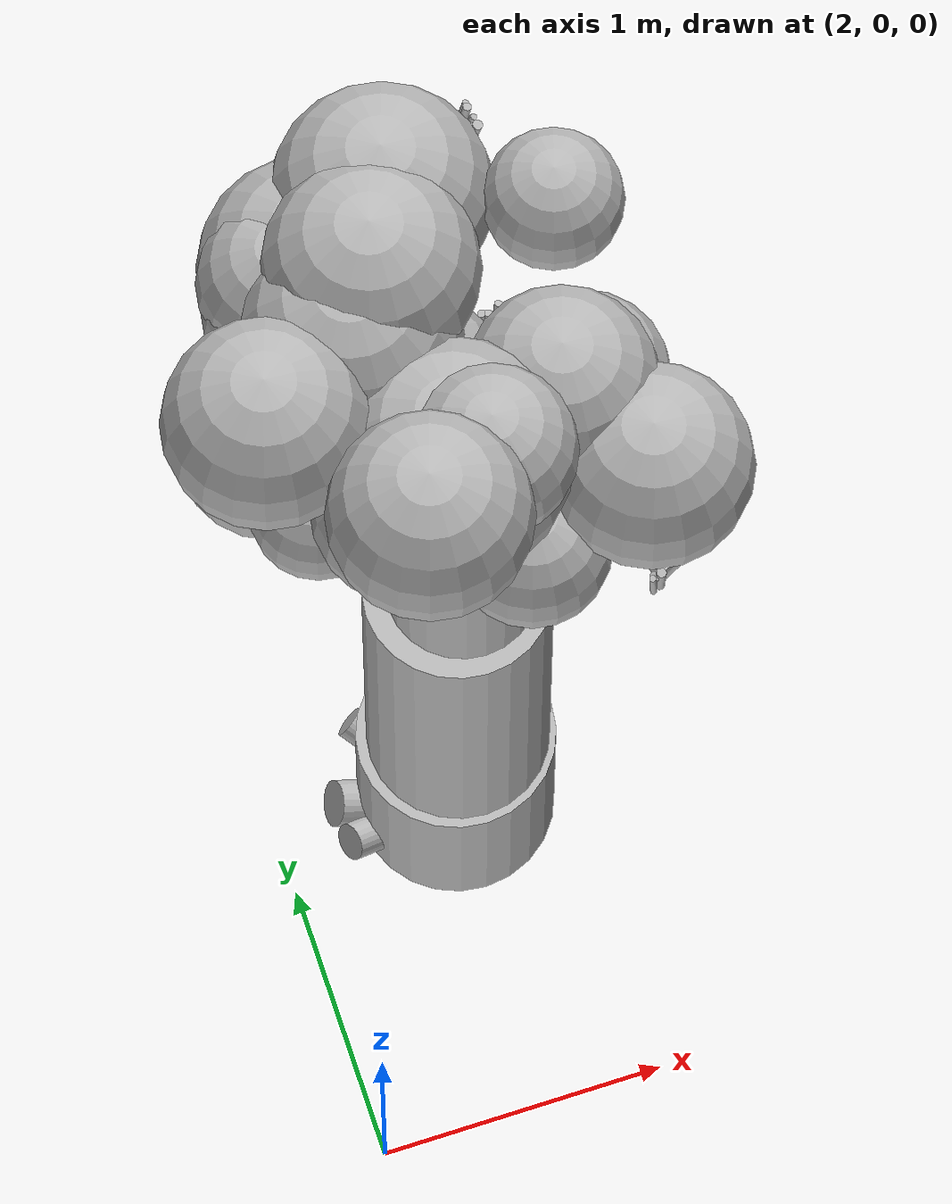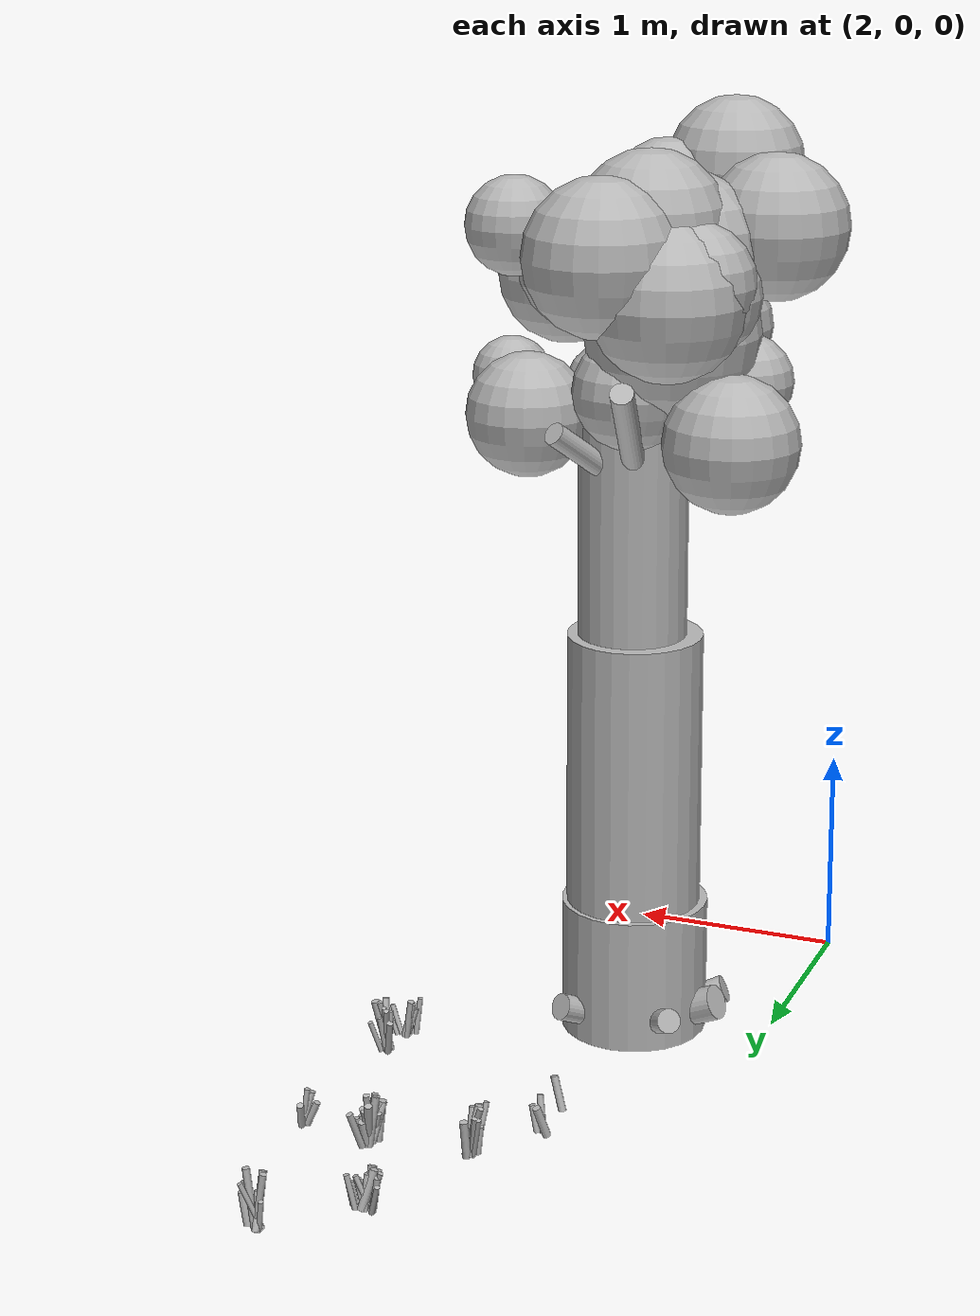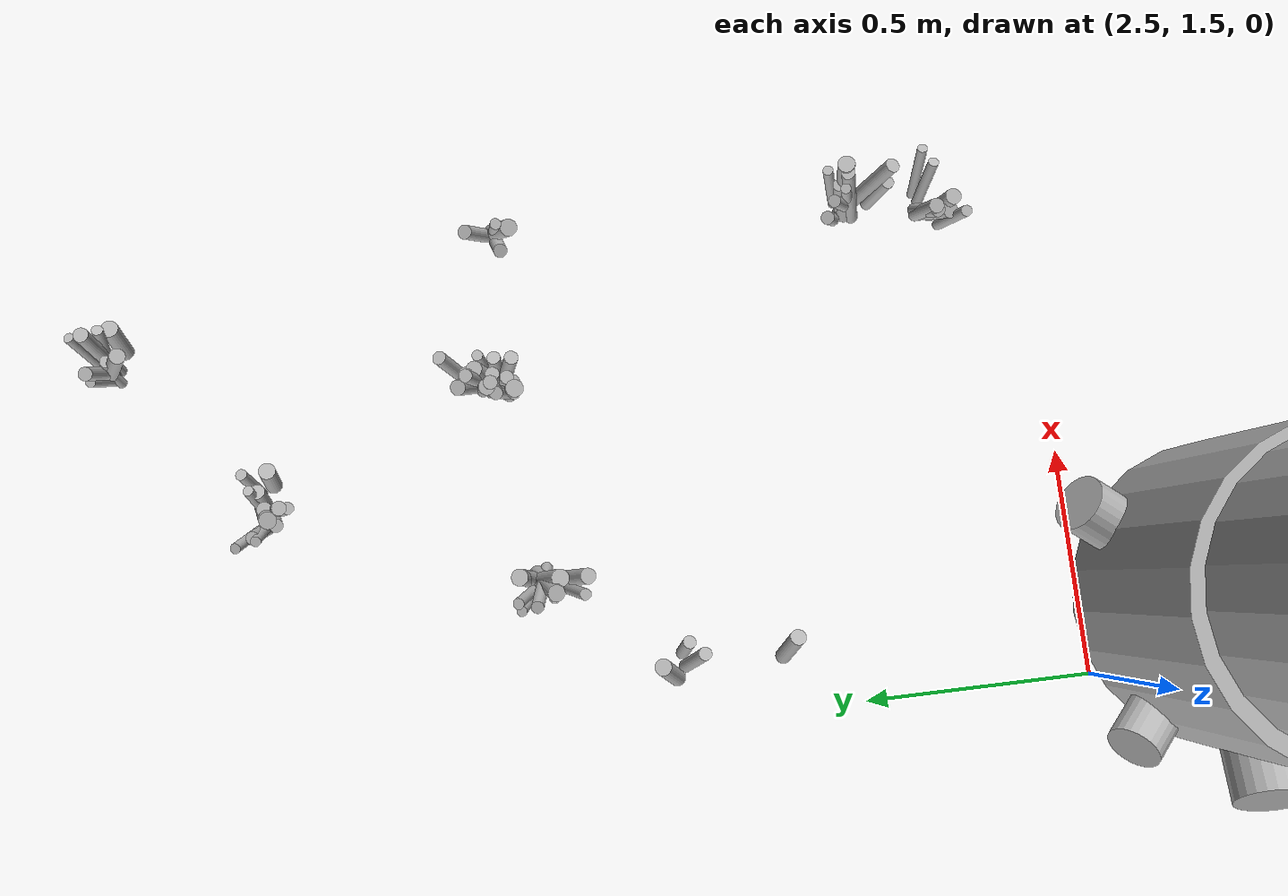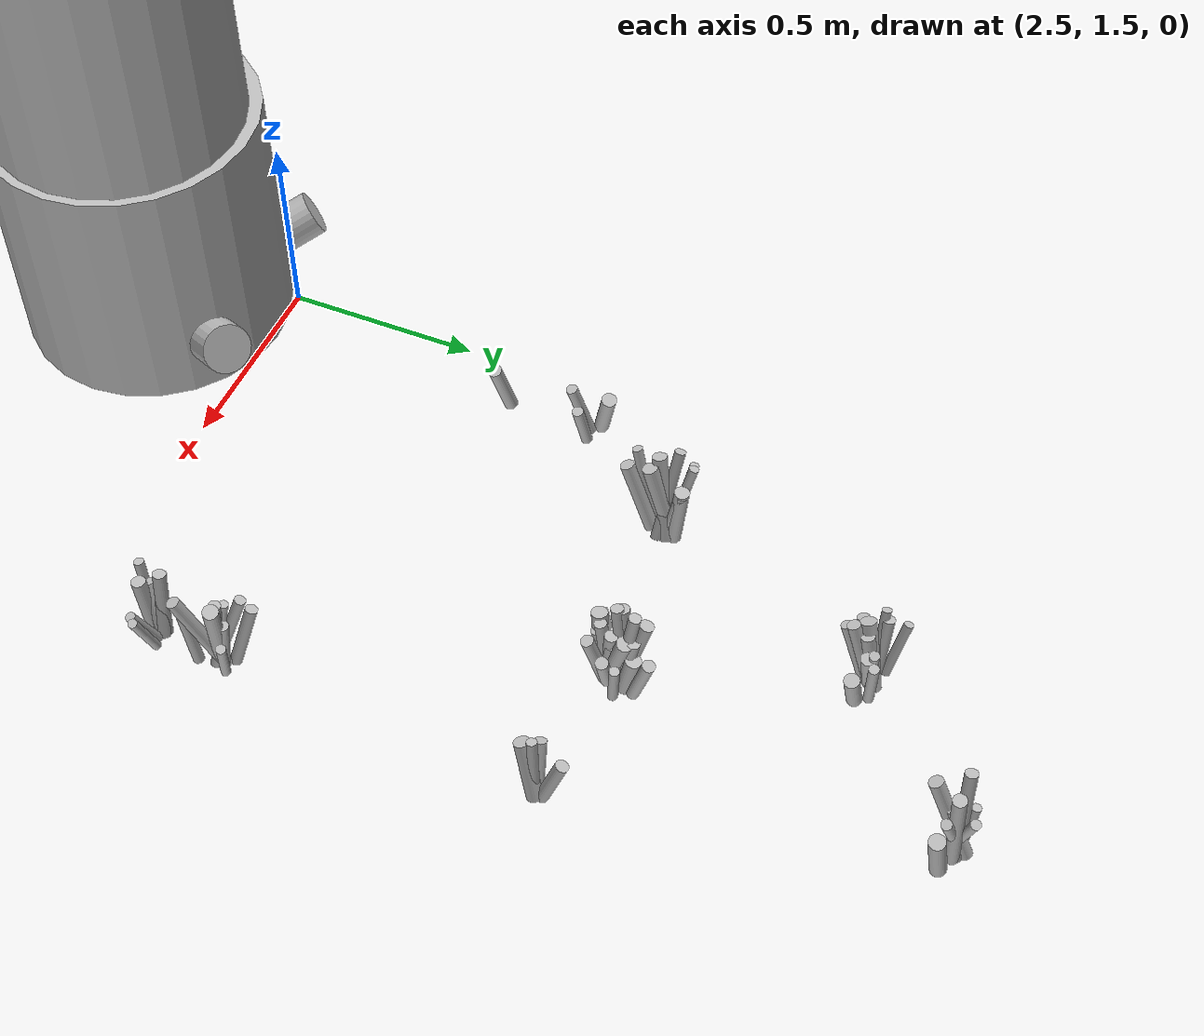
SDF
<sdf version="1.6">
 <world name="default">
  <model name="tree_13">
   <static>true</static>
   <pose>2.6390 1.1650 0 0 0 0</pose>
   <link name="trunk">
    <pose>0 0 1.5000 0 0 0</pose>
    <collision name="trunk_c">
     <geometry><cylinder><radius>0.3500</radius><length>3.0000</length></cylinder></geometry>
    </collision>
   </link>
   <link name="trunk_v0">
    <pose>0.0013 0.0001 0.3100 0 0 0</pose>
    <visual name="trunk_v0_v">
     <geometry><cylinder><radius>0.3448</radius><length>0.6448</length></cylinder></geometry>
     <material>
      <script>
       <uri>model://bushfire/materials/scripts</uri>
       <uri>model://bushfire/materials/textures</uri>
       <name>Bushfire/CharBark</name>
      </script>
     </material>
    </visual>
   </link>
   <link name="trunk_v1">
    <pose>0.0096 0.0006 1.2700 0 0 0</pose>
    <visual name="trunk_v1_v">
     <geometry><cylinder><radius>0.3150</radius><length>1.3520</length></cylinder></geometry>
     <material>
      <script>
       <uri>model://bushfire/materials/scripts</uri>
       <uri>model://bushfire/materials/textures</uri>
       <name>Bushfire/BarkStringy</name>
      </script>
     </material>
    </visual>
   </link>
   <link name="trunk_v2">
    <pose>0.0241 0.0016 2.4600 0 0 0</pose>
    <visual name="trunk_v2_v">
     <geometry><cylinder><radius>0.2520</radius><length>1.1232</length></cylinder></geometry>
     <material>
      <script>
       <uri>model://bushfire/materials/scripts</uri>
       <uri>model://bushfire/materials/textures</uri>
       <name>Bushfire/BarkStringy</name>
      </script>
     </material>
    </visual>
   </link>
   <link name="root0">
    <pose>-0.2385 0.0270 0.09 0 1.150 3.029</pose>
    <visual name="root0_v">
     <geometry><cylinder><radius>0.0823</radius><length>0.4200</length></cylinder></geometry>
     <material>
      <script>
       <uri>model://bushfire/materials/scripts</uri>
       <uri>model://bushfire/materials/textures</uri>
       <name>Bushfire/CharBark</name>
      </script>
     </material>
    </visual>
   </link>
   <link name="root1">
    <pose>0.1326 0.2000 0.09 0 1.150 0.985</pose>
    <visual name="root1_v">
     <geometry><cylinder><radius>0.0630</radius><length>0.4200</length></cylinder></geometry>
     <material>
      <script>
       <uri>model://bushfire/materials/scripts</uri>
       <uri>model://bushfire/materials/textures</uri>
       <name>Bushfire/CharBark</name>
      </script>
     </material>
    </visual>
   </link>
   <link name="root2">
    <pose>-0.2329 -0.0581 0.09 0 1.150 3.386</pose>
    <visual name="root2_v">
     <geometry><cylinder><radius>0.0658</radius><length>0.4200</length></cylinder></geometry>
     <material>
      <script>
       <uri>model://bushfire/materials/scripts</uri>
       <uri>model://bushfire/materials/textures</uri>
       <name>Bushfire/CharBark</name>
      </script>
     </material>
    </visual>
   </link>
   <link name="root3">
    <pose>-0.1591 0.1797 0.09 0 1.150 2.296</pose>
    <visual name="root3_v">
     <geometry><cylinder><radius>0.0579</radius><length>0.4200</length></cylinder></geometry>
     <material>
      <script>
       <uri>model://bushfire/materials/scripts</uri>
       <uri>model://bushfire/materials/textures</uri>
       <name>Bushfire/CharBark</name>
      </script>
     </material>
    </visual>
   </link>
   <link name="branch0">
    <pose>-0.0700 0.3119 2.9238 0 0.8235 1.7916</pose>
    <visual name="branch0_v">
     <geometry><cylinder><radius>0.0530</radius><length>0.8716</length></cylinder></geometry>
     <material>
      <script>
       <uri>model://bushfire/materials/scripts</uri>
       <uri>model://bushfire/materials/textures</uri>
       <name>Bushfire/BarkStringy</name>
      </script>
     </material>
    </visual>
   </link>
   <link name="branch1">
    <pose>-0.2657 0.0773 2.8261 0 0.8421 2.8586</pose>
    <visual name="branch1_v">
     <geometry><cylinder><radius>0.0550</radius><length>0.7419</length></cylinder></geometry>
     <material>
      <script>
       <uri>model://bushfire/materials/scripts</uri>
       <uri>model://bushfire/materials/textures</uri>
       <name>Bushfire/BarkStringy</name>
      </script>
     </material>
    </visual>
   </link>
   <link name="branch2">
    <pose>-0.1644 -0.0810 2.8057 0 0.6818 3.5994</pose>
    <visual name="branch2_v">
     <geometry><cylinder><radius>0.0338</radius><length>0.5818</length></cylinder></geometry>
     <material>
      <script>
       <uri>model://bushfire/materials/scripts</uri>
       <uri>model://bushfire/materials/textures</uri>
       <name>Bushfire/BarkStringy</name>
      </script>
     </material>
    </visual>
   </link>
   <link name="branch3">
    <pose>0.0015 -0.2358 2.9079 0 0.6390 4.7186</pose>
    <visual name="branch3_v">
     <geometry><cylinder><radius>0.0411</radius><length>0.7908</length></cylinder></geometry>
     <material>
      <script>
       <uri>model://bushfire/materials/scripts</uri>
       <uri>model://bushfire/materials/textures</uri>
       <name>Bushfire/BarkStringy</name>
      </script>
     </material>
    </visual>
   </link>
   <link name="branch4">
    <pose>0.3281 -0.1446 2.8419 0 0.9142 5.8679</pose>
    <visual name="branch4_v">
     <geometry><cylinder><radius>0.0303</radius><length>0.9053</length></cylinder></geometry>
     <material>
      <script>
       <uri>model://bushfire/materials/scripts</uri>
       <uri>model://bushfire/materials/textures</uri>
       <name>Bushfire/BarkStringy</name>
      </script>
     </material>
    </visual>
   </link>
   <link name="branch5">
    <pose>0.1232 0.2126 2.7920 0 0.9528 7.3286</pose>
    <visual name="branch5_v">
     <geometry><cylinder><radius>0.0523</radius><length>0.6029</length></cylinder></geometry>
     <material>
      <script>
       <uri>model://bushfire/materials/scripts</uri>
       <uri>model://bushfire/materials/textures</uri>
       <name>Bushfire/BarkStringy</name>
      </script>
     </material>
    </visual>
   </link>
   <link name="foliage0">
    <pose>-0.1787 0.0745 3.3781 0 0 0</pose>
    <visual name="foliage0_v">
     <geometry><sphere><radius>0.3960</radius></sphere></geometry>
     <material>
      <script>
       <uri>model://bushfire/materials/scripts</uri>
       <uri>model://bushfire/materials/textures</uri>
       <name>Bushfire/Foliage0</name>
      </script>
     </material>
    </visual>
   </link>
   <link name="foliage1">
    <pose>-0.5712 0.2862 2.9725 0 0 0</pose>
    <visual name="foliage1_v">
     <geometry><sphere><radius>0.1891</radius></sphere></geometry>
     <material>
      <script>
       <uri>model://bushfire/materials/scripts</uri>
       <uri>model://bushfire/materials/textures</uri>
       <name>Bushfire/Foliage2</name>
      </script>
     </material>
    </visual>
   </link>
   <link name="foliage2">
    <pose>-0.2697 0.1860 3.7698 0 0 0</pose>
    <visual name="foliage2_v">
     <geometry><sphere><radius>0.3443</radius></sphere></geometry>
     <material>
      <script>
       <uri>model://bushfire/materials/scripts</uri>
       <uri>model://bushfire/materials/textures</uri>
       <name>Bushfire/Foliage2</name>
      </script>
     </material>
    </visual>
   </link>
   <link name="foliage3">
    <pose>-0.0021 -0.3601 3.9062 0 0 0</pose>
    <visual name="foliage3_v">
     <geometry><sphere><radius>0.2623</radius></sphere></geometry>
     <material>
      <script>
       <uri>model://bushfire/materials/scripts</uri>
       <uri>model://bushfire/materials/textures</uri>
       <name>Bushfire/Foliage0</name>
      </script>
     </material>
    </visual>
   </link>
   <link name="foliage4">
    <pose>0.2203 -0.2286 3.0423 0 0 0</pose>
    <visual name="foliage4_v">
     <geometry><sphere><radius>0.2060</radius></sphere></geometry>
     <material>
      <script>
       <uri>model://bushfire/materials/scripts</uri>
       <uri>model://bushfire/materials/textures</uri>
       <name>Bushfire/Foliage1</name>
      </script>
     </material>
    </visual>
   </link>
   <link name="foliage5">
    <pose>0.4729 0.1575 2.9750 0 0 0</pose>
    <visual name="foliage5_v">
     <geometry><sphere><radius>0.2828</radius></sphere></geometry>
     <material>
      <script>
       <uri>model://bushfire/materials/scripts</uri>
       <uri>model://bushfire/materials/textures</uri>
       <name>Bushfire/Foliage2</name>
      </script>
     </material>
    </visual>
   </link>
   <link name="foliage6">
    <pose>-0.0765 0.3349 3.6280 0 0 0</pose>
    <visual name="foliage6_v">
     <geometry><sphere><radius>0.2038</radius></sphere></geometry>
     <material>
      <script>
       <uri>model://bushfire/materials/scripts</uri>
       <uri>model://bushfire/materials/textures</uri>
       <name>Bushfire/Foliage0</name>
      </script>
     </material>
    </visual>
   </link>
   <link name="foliage7">
    <pose>-0.6086 -0.0451 3.8539 0 0 0</pose>
    <visual name="foliage7_v">
     <geometry><sphere><radius>0.3232</radius></sphere></geometry>
     <material>
      <script>
       <uri>model://bushfire/materials/scripts</uri>
       <uri>model://bushfire/materials/textures</uri>
       <name>Bushfire/Foliage2</name>
      </script>
     </material>
    </visual>
   </link>
   <link name="foliage8">
    <pose>-0.4697 -0.0785 3.1496 0 0 0</pose>
    <visual name="foliage8_v">
     <geometry><sphere><radius>0.2180</radius></sphere></geometry>
     <material>
      <script>
       <uri>model://bushfire/materials/scripts</uri>
       <uri>model://bushfire/materials/textures</uri>
       <name>Bushfire/Foliage1</name>
      </script>
     </material>
    </visual>
   </link>
   <link name="foliage9">
    <pose>0.1004 -0.4490 3.2719 0 0 0</pose>
    <visual name="foliage9_v">
     <geometry><sphere><radius>0.2507</radius></sphere></geometry>
     <material>
      <script>
       <uri>model://bushfire/materials/scripts</uri>
       <uri>model://bushfire/materials/textures</uri>
       <name>Bushfire/Foliage2</name>
      </script>
     </material>
    </visual>
   </link>
   <link name="foliage10">
    <pose>0.3053 -0.1081 3.6283 0 0 0</pose>
    <visual name="foliage10_v">
     <geometry><sphere><radius>0.3050</radius></sphere></geometry>
     <material>
      <script>
       <uri>model://bushfire/materials/scripts</uri>
       <uri>model://bushfire/materials/textures</uri>
       <name>Bushfire/Foliage2</name>
      </script>
     </material>
    </visual>
   </link>
   <link name="foliage11">
    <pose>0.4411 0.3836 3.8649 0 0 0</pose>
    <visual name="foliage11_v">
     <geometry><sphere><radius>0.2192</radius></sphere></geometry>
     <material>
      <script>
       <uri>model://bushfire/materials/scripts</uri>
       <uri>model://bushfire/materials/textures</uri>
       <name>Bushfire/Foliage1</name>
      </script>
     </material>
    </visual>
   </link>
   <link name="foliage12">
    <pose>-0.3963 0.4547 3.6745 0 0 0</pose>
    <visual name="foliage12_v">
     <geometry><sphere><radius>0.2737</radius></sphere></geometry>
     <material>
      <script>
       <uri>model://bushfire/materials/scripts</uri>
       <uri>model://bushfire/materials/textures</uri>
       <name>Bushfire/Foliage1</name>
      </script>
     </material>
    </visual>
   </link>
   <link name="foliage13">
    <pose>-0.4203 0.3908 3.6143 0 0 0</pose>
    <visual name="foliage13_v">
     <geometry><sphere><radius>0.2548</radius></sphere></geometry>
     <material>
      <script>
       <uri>model://bushfire/materials/scripts</uri>
       <uri>model://bushfire/materials/textures</uri>
       <name>Bushfire/Foliage1</name>
      </script>
     </material>
    </visual>
   </link>
   <link name="foliage14">
    <pose>-0.1707 0.2121 3.8574 0 0 0</pose>
    <visual name="foliage14_v">
     <geometry><sphere><radius>0.2044</radius></sphere></geometry>
     <material>
      <script>
       <uri>model://bushfire/materials/scripts</uri>
       <uri>model://bushfire/materials/textures</uri>
       <name>Bushfire/Foliage2</name>
      </script>
     </material>
    </visual>
   </link>
   <link name="foliage15">
    <pose>-0.2585 -0.5527 4.0308 0 0 0</pose>
    <visual name="foliage15_v">
     <geometry><sphere><radius>0.3146</radius></sphere></geometry>
     <material>
      <script>
       <uri>model://bushfire/materials/scripts</uri>
       <uri>model://bushfire/materials/textures</uri>
       <name>Bushfire/Foliage0</name>
      </script>
     </material>
    </visual>
   </link>
   <link name="foliage16">
    <pose>0.7065 -0.2354 3.0496 0 0 0</pose>
    <visual name="foliage16_v">
     <geometry><sphere><radius>0.1856</radius></sphere></geometry>
     <material>
      <script>
       <uri>model://bushfire/materials/scripts</uri>
       <uri>model://bushfire/materials/textures</uri>
       <name>Bushfire/Foliage2</name>
      </script>
     </material>
    </visual>
   </link>
   <link name="foliage17">
    <pose>-0.0212 0.1711 3.1216 0 0 0</pose>
    <visual name="foliage17_v">
     <geometry><sphere><radius>0.2639</radius></sphere></geometry>
     <material>
      <script>
       <uri>model://bushfire/materials/scripts</uri>
       <uri>model://bushfire/materials/textures</uri>
       <name>Bushfire/Foliage2</name>
      </script>
     </material>
    </visual>
   </link>
   <link name="foliage18">
    <pose>-0.3015 0.5106 3.6062 0 0 0</pose>
    <visual name="foliage18_v">
     <geometry><sphere><radius>0.3480</radius></sphere></geometry>
     <material>
      <script>
       <uri>model://bushfire/materials/scripts</uri>
       <uri>model://bushfire/materials/textures</uri>
       <name>Bushfire/Foliage0</name>
      </script>
     </material>
    </visual>
   </link>
   <link name="foliage19">
    <pose>-0.5186 0.2659 2.9491 0 0 0</pose>
    <visual name="foliage19_v">
     <geometry><sphere><radius>0.3063</radius></sphere></geometry>
     <material>
      <script>
       <uri>model://bushfire/materials/scripts</uri>
       <uri>model://bushfire/materials/textures</uri>
       <name>Bushfire/Foliage1</name>
      </script>
     </material>
    </visual>
   </link>
   <link name="foliage20">
    <pose>-0.2490 -0.2420 3.3562 0 0 0</pose>
    <visual name="foliage20_v">
     <geometry><sphere><radius>0.2857</radius></sphere></geometry>
     <material>
      <script>
       <uri>model://bushfire/materials/scripts</uri>
       <uri>model://bushfire/materials/textures</uri>
       <name>Bushfire/Foliage1</name>
      </script>
     </material>
    </visual>
   </link>
   <link name="foliage21">
    <pose>-0.0920 -0.2616 3.6941 0 0 0</pose>
    <visual name="foliage21_v">
     <geometry><sphere><radius>0.3692</radius></sphere></geometry>
     <material>
      <script>
       <uri>model://bushfire/materials/scripts</uri>
       <uri>model://bushfire/materials/textures</uri>
       <name>Bushfire/Foliage0</name>
      </script>
     </material>
    </visual>
   </link>
   <link name="foliage22">
    <pose>0.4980 -0.4009 3.5123 0 0 0</pose>
    <visual name="foliage22_v">
     <geometry><sphere><radius>0.3189</radius></sphere></geometry>
     <material>
      <script>
       <uri>model://bushfire/materials/scripts</uri>
       <uri>model://bushfire/materials/textures</uri>
       <name>Bushfire/Foliage0</name>
      </script>
     </material>
    </visual>
   </link>
   <link name="foliage23">
    <pose>-0.0653 0.6251 3.7776 0 0 0</pose>
    <visual name="foliage23_v">
     <geometry><sphere><radius>0.3003</radius></sphere></geometry>
     <material>
      <script>
       <uri>model://bushfire/materials/scripts</uri>
       <uri>model://bushfire/materials/textures</uri>
       <name>Bushfire/Foliage0</name>
      </script>
     </material>
    </visual>
   </link>
   <link name="foliage24">
    <pose>-0.0382 0.5933 3.7895 0 0 0</pose>
    <visual name="foliage24_v">
     <geometry><sphere><radius>0.3477</radius></sphere></geometry>
     <material>
      <script>
       <uri>model://bushfire/materials/scripts</uri>
       <uri>model://bushfire/materials/textures</uri>
       <name>Bushfire/Foliage0</name>
      </script>
     </material>
    </visual>
   </link>
   <link name="foliage25">
    <pose>-0.1601 0.3280 3.8824 0 0 0</pose>
    <visual name="foliage25_v">
     <geometry><sphere><radius>0.3399</radius></sphere></geometry>
     <material>
      <script>
       <uri>model://bushfire/materials/scripts</uri>
       <uri>model://bushfire/materials/textures</uri>
       <name>Bushfire/Foliage2</name>
      </script>
     </material>
    </visual>
   </link>
   <link name="foliage26">
    <pose>-0.0732 0.0883 3.0453 0 0 0</pose>
    <visual name="foliage26_v">
     <geometry><sphere><radius>0.1851</radius></sphere></geometry>
     <material>
      <script>
       <uri>model://bushfire/materials/scripts</uri>
       <uri>model://bushfire/materials/textures</uri>
       <name>Bushfire/Foliage0</name>
      </script>
     </material>
    </visual>
   </link>
  </model>
  <model name="tussocks">
   <static>true</static>
   <link name="tuft2_0">
    <pose>3.2951 2.7824 0.1030 0 0.2827 2.0615</pose>
    <visual name="tuft2_0_v">
     <geometry><cylinder><radius>0.0171</radius><length>0.2238</length></cylinder></geometry>
     <material>
      <script>
       <uri>model://bushfire/materials/scripts</uri>
       <uri>model://bushfire/materials/textures</uri>
       <name>Bushfire/Foliage2</name>
      </script>
     </material>
    </visual>
   </link>
   <link name="tuft2_1">
    <pose>3.2753 2.7214 0.0883 0 0.3485 4.1896</pose>
    <visual name="tuft2_1_v">
     <geometry><cylinder><radius>0.0142</radius><length>0.1919</length></cylinder></geometry>
     <material>
      <script>
       <uri>model://bushfire/materials/scripts</uri>
       <uri>model://bushfire/materials/textures</uri>
       <name>Bushfire/Tussock</name>
      </script>
     </material>
    </visual>
   </link>
   <link name="tuft2_2">
    <pose>3.3023 2.7693 0.1197 0 0.1517 1.7793</pose>
    <visual name="tuft2_2_v">
     <geometry><cylinder><radius>0.0145</radius><length>0.2601</length></cylinder></geometry>
     <material>
      <script>
       <uri>model://bushfire/materials/scripts</uri>
       <uri>model://bushfire/materials/textures</uri>
       <name>Bushfire/Foliage2</name>
      </script>
     </material>
    </visual>
   </link>
   <link name="tuft2_3">
    <pose>3.2862 2.7573 0.1107 0 0.1445 3.7451</pose>
    <visual name="tuft2_3_v">
     <geometry><cylinder><radius>0.0175</radius><length>0.2406</length></cylinder></geometry>
     <material>
      <script>
       <uri>model://bushfire/materials/scripts</uri>
       <uri>model://bushfire/materials/textures</uri>
       <name>Bushfire/Tussock</name>
      </script>
     </material>
    </visual>
   </link>
   <link name="tuft2_4">
    <pose>3.3035 2.7724 0.0828 0 0.1946 1.3180</pose>
    <visual name="tuft2_4_v">
     <geometry><cylinder><radius>0.0169</radius><length>0.1799</length></cylinder></geometry>
     <material>
      <script>
       <uri>model://bushfire/materials/scripts</uri>
       <uri>model://bushfire/materials/textures</uri>
       <name>Bushfire/Foliage2</name>
      </script>
     </material>
    </visual>
   </link>
   <link name="tuft2_5">
    <pose>3.2920 2.7546 0.1138 0 0.1626 4.0694</pose>
    <visual name="tuft2_5_v">
     <geometry><cylinder><radius>0.0151</radius><length>0.2474</length></cylinder></geometry>
     <material>
      <script>
       <uri>model://bushfire/materials/scripts</uri>
       <uri>model://bushfire/materials/textures</uri>
       <name>Bushfire/Foliage2</name>
      </script>
     </material>
    </visual>
   </link>
   <link name="tuft2_6">
    <pose>3.3379 2.8202 0.0856 0 0.3311 0.9700</pose>
    <visual name="tuft2_6_v">
     <geometry><cylinder><radius>0.0152</radius><length>0.1862</length></cylinder></geometry>
     <material>
      <script>
       <uri>model://bushfire/materials/scripts</uri>
       <uri>model://bushfire/materials/textures</uri>
       <name>Bushfire/Tussock</name>
      </script>
     </material>
    </visual>
   </link>
   <link name="tuft2_7">
    <pose>3.2917 2.7209 0.0716 0 0.3199 4.4909</pose>
    <visual name="tuft2_7_v">
     <geometry><cylinder><radius>0.0192</radius><length>0.1556</length></cylinder></geometry>
     <material>
      <script>
       <uri>model://bushfire/materials/scripts</uri>
       <uri>model://bushfire/materials/textures</uri>
       <name>Bushfire/Foliage2</name>
      </script>
     </material>
    </visual>
   </link>
   <link name="tuft58_0">
    <pose>3.5443 1.6772 0.0821 0 0.1416 4.0757</pose>
    <visual name="tuft58_0_v">
     <geometry><cylinder><radius>0.0124</radius><length>0.1786</length></cylinder></geometry>
     <material>
      <script>
       <uri>model://bushfire/materials/scripts</uri>
       <uri>model://bushfire/materials/textures</uri>
       <name>Bushfire/Tussock</name>
      </script>
     </material>
    </visual>
   </link>
   <link name="tuft58_1">
    <pose>3.5686 1.7333 0.0855 0 0.1503 3.2160</pose>
    <visual name="tuft58_1_v">
     <geometry><cylinder><radius>0.0162</radius><length>0.1858</length></cylinder></geometry>
     <material>
      <script>
       <uri>model://bushfire/materials/scripts</uri>
       <uri>model://bushfire/materials/textures</uri>
       <name>Bushfire/Tussock</name>
      </script>
     </material>
    </visual>
   </link>
   <link name="tuft58_2">
    <pose>3.6582 1.7387 0.0798 0 0.3629 0.0561</pose>
    <visual name="tuft58_2_v">
     <geometry><cylinder><radius>0.0111</radius><length>0.1735</length></cylinder></geometry>
     <material>
      <script>
       <uri>model://bushfire/materials/scripts</uri>
       <uri>model://bushfire/materials/textures</uri>
       <name>Bushfire/Tussock</name>
      </script>
     </material>
    </visual>
   </link>
   <link name="tuft58_3">
    <pose>3.6348 1.7213 0.0685 0 0.3830 6.0122</pose>
    <visual name="tuft58_3_v">
     <geometry><cylinder><radius>0.0119</radius><length>0.1489</length></cylinder></geometry>
     <material>
      <script>
       <uri>model://bushfire/materials/scripts</uri>
       <uri>model://bushfire/materials/textures</uri>
       <name>Bushfire/Foliage2</name>
      </script>
     </material>
    </visual>
   </link>
   <link name="tuft58_4">
    <pose>3.5781 1.6942 0.0730 0 0.1073 4.5003</pose>
    <visual name="tuft58_4_v">
     <geometry><cylinder><radius>0.0178</radius><length>0.1587</length></cylinder></geometry>
     <material>
      <script>
       <uri>model://bushfire/materials/scripts</uri>
       <uri>model://bushfire/materials/textures</uri>
       <name>Bushfire/Foliage2</name>
      </script>
     </material>
    </visual>
   </link>
   <link name="tuft58_5">
    <pose>3.5688 1.7105 0.0630 0 0.3857 4.0727</pose>
    <visual name="tuft58_5_v">
     <geometry><cylinder><radius>0.0183</radius><length>0.1369</length></cylinder></geometry>
     <material>
      <script>
       <uri>model://bushfire/materials/scripts</uri>
       <uri>model://bushfire/materials/textures</uri>
       <name>Bushfire/Tussock</name>
      </script>
     </material>
    </visual>
   </link>
   <link name="tuft58_6">
    <pose>3.5746 1.7155 0.0554 0 0.4032 4.1482</pose>
    <visual name="tuft58_6_v">
     <geometry><cylinder><radius>0.0137</radius><length>0.1204</length></cylinder></geometry>
     <material>
      <script>
       <uri>model://bushfire/materials/scripts</uri>
       <uri>model://bushfire/materials/textures</uri>
       <name>Bushfire/Tussock</name>
      </script>
     </material>
    </visual>
   </link>
   <link name="tuft58_7">
    <pose>3.5695 1.7316 0.0816 0 0.2585 3.3156</pose>
    <visual name="tuft58_7_v">
     <geometry><cylinder><radius>0.0156</radius><length>0.1774</length></cylinder></geometry>
     <material>
      <script>
       <uri>model://bushfire/materials/scripts</uri>
       <uri>model://bushfire/materials/textures</uri>
       <name>Bushfire/Tussock</name>
      </script>
     </material>
    </visual>
   </link>
   <link name="tuft90_3">
    <pose>2.6206 2.4296 0.0712 0 0.3335 0.7867</pose>
    <visual name="tuft90_3_v">
     <geometry><cylinder><radius>0.0186</radius><length>0.1548</length></cylinder></geometry>
     <material>
      <script>
       <uri>model://bushfire/materials/scripts</uri>
       <uri>model://bushfire/materials/textures</uri>
       <name>Bushfire/Foliage2</name>
      </script>
     </material>
    </visual>
   </link>
   <link name="tuft90_5">
    <pose>2.6413 2.3738 0.0799 0 0.2775 5.4300</pose>
    <visual name="tuft90_5_v">
     <geometry><cylinder><radius>0.0145</radius><length>0.1737</length></cylinder></geometry>
     <material>
      <script>
       <uri>model://bushfire/materials/scripts</uri>
       <uri>model://bushfire/materials/textures</uri>
       <name>Bushfire/Foliage2</name>
      </script>
     </material>
    </visual>
   </link>
   <link name="tuft90_7">
    <pose>2.6697 2.3887 0.0587 0 0.2362 5.8980</pose>
    <visual name="tuft90_7_v">
     <geometry><cylinder><radius>0.0143</radius><length>0.1277</length></cylinder></geometry>
     <material>
      <script>
       <uri>model://bushfire/materials/scripts</uri>
       <uri>model://bushfire/materials/textures</uri>
       <name>Bushfire/Tussock</name>
      </script>
     </material>
    </visual>
   </link>
   <link name="tuft93_0">
    <pose>3.3096 2.7479 0.0854 0 0.3092 1.1618</pose>
    <visual name="tuft93_0_v">
     <geometry><cylinder><radius>0.0190</radius><length>0.1857</length></cylinder></geometry>
     <material>
      <script>
       <uri>model://bushfire/materials/scripts</uri>
       <uri>model://bushfire/materials/textures</uri>
       <name>Bushfire/Foliage2</name>
      </script>
     </material>
    </visual>
   </link>
   <link name="tuft93_1">
    <pose>3.3006 2.7270 0.0800 0 0.1272 0.9298</pose>
    <visual name="tuft93_1_v">
     <geometry><cylinder><radius>0.0155</radius><length>0.1740</length></cylinder></geometry>
     <material>
      <script>
       <uri>model://bushfire/materials/scripts</uri>
       <uri>model://bushfire/materials/textures</uri>
       <name>Bushfire/Foliage2</name>
      </script>
     </material>
    </visual>
   </link>
   <link name="tuft93_2">
    <pose>3.2855 2.7300 0.0682 0 0.2331 2.9238</pose>
    <visual name="tuft93_2_v">
     <geometry><cylinder><radius>0.0150</radius><length>0.1482</length></cylinder></geometry>
     <material>
      <script>
       <uri>model://bushfire/materials/scripts</uri>
       <uri>model://bushfire/materials/textures</uri>
       <name>Bushfire/Foliage2</name>
      </script>
     </material>
    </visual>
   </link>
   <link name="tuft93_3">
    <pose>3.3225 2.7058 0.0799 0 0.2533 5.5274</pose>
    <visual name="tuft93_3_v">
     <geometry><cylinder><radius>0.0155</radius><length>0.1736</length></cylinder></geometry>
     <material>
      <script>
       <uri>model://bushfire/materials/scripts</uri>
       <uri>model://bushfire/materials/textures</uri>
       <name>Bushfire/Tussock</name>
      </script>
     </material>
    </visual>
   </link>
   <link name="tuft93_4">
    <pose>3.3151 2.7822 0.0576 0 0.2033 1.3115</pose>
    <visual name="tuft93_4_v">
     <geometry><cylinder><radius>0.0191</radius><length>0.1252</length></cylinder></geometry>
     <material>
      <script>
       <uri>model://bushfire/materials/scripts</uri>
       <uri>model://bushfire/materials/textures</uri>
       <name>Bushfire/Tussock</name>
      </script>
     </material>
    </visual>
   </link>
   <link name="tuft93_5">
    <pose>3.2975 2.7164 0.0873 0 0.1281 4.4416</pose>
    <visual name="tuft93_5_v">
     <geometry><cylinder><radius>0.0149</radius><length>0.1897</length></cylinder></geometry>
     <material>
      <script>
       <uri>model://bushfire/materials/scripts</uri>
       <uri>model://bushfire/materials/textures</uri>
       <name>Bushfire/Foliage2</name>
      </script>
     </material>
    </visual>
   </link>
   <link name="tuft93_6">
    <pose>3.3523 2.7608 0.0559 0 0.1474 0.5815</pose>
    <visual name="tuft93_6_v">
     <geometry><cylinder><radius>0.0122</radius><length>0.1216</length></cylinder></geometry>
     <material>
      <script>
       <uri>model://bushfire/materials/scripts</uri>
       <uri>model://bushfire/materials/textures</uri>
       <name>Bushfire/Tussock</name>
      </script>
     </material>
    </visual>
   </link>
   <link name="tuft93_7">
    <pose>3.2764 2.7000 0.0882 0 0.1265 3.9810</pose>
    <visual name="tuft93_7_v">
     <geometry><cylinder><radius>0.0194</radius><length>0.1916</length></cylinder></geometry>
     <material>
      <script>
       <uri>model://bushfire/materials/scripts</uri>
       <uri>model://bushfire/materials/textures</uri>
       <name>Bushfire/Tussock</name>
      </script>
     </material>
    </visual>
   </link>
   <link name="tuft93_8">
    <pose>3.3016 2.7296 0.0639 0 0.1065 1.1678</pose>
    <visual name="tuft93_8_v">
     <geometry><cylinder><radius>0.0176</radius><length>0.1389</length></cylinder></geometry>
     <material>
      <script>
       <uri>model://bushfire/materials/scripts</uri>
       <uri>model://bushfire/materials/textures</uri>
       <name>Bushfire/Foliage2</name>
      </script>
     </material>
    </visual>
   </link>
   <link name="tuft93_9">
    <pose>3.3305 2.7293 0.0570 0 0.3244 0.0857</pose>
    <visual name="tuft93_9_v">
     <geometry><cylinder><radius>0.0154</radius><length>0.1240</length></cylinder></geometry>
     <material>
      <script>
       <uri>model://bushfire/materials/scripts</uri>
       <uri>model://bushfire/materials/textures</uri>
       <name>Bushfire/Tussock</name>
      </script>
     </material>
    </visual>
   </link>
   <link name="tuft105_0">
    <pose>3.6433 2.7396 0.0611 0 0.3546 1.9332</pose>
    <visual name="tuft105_0_v">
     <geometry><cylinder><radius>0.0159</radius><length>0.1329</length></cylinder></geometry>
     <material>
      <script>
       <uri>model://bushfire/materials/scripts</uri>
       <uri>model://bushfire/materials/textures</uri>
       <name>Bushfire/Tussock</name>
      </script>
     </material>
    </visual>
   </link>
   <link name="tuft105_4">
    <pose>3.6438 2.6962 0.0821 0 0.1402 3.6605</pose>
    <visual name="tuft105_4_v">
     <geometry><cylinder><radius>0.0123</radius><length>0.1785</length></cylinder></geometry>
     <material>
      <script>
       <uri>model://bushfire/materials/scripts</uri>
       <uri>model://bushfire/materials/textures</uri>
       <name>Bushfire/Tussock</name>
      </script>
     </material>
    </visual>
   </link>
   <link name="tuft105_5">
    <pose>3.6103 2.6934 0.0556 0 0.4127 3.3587</pose>
    <visual name="tuft105_5_v">
     <geometry><cylinder><radius>0.0155</radius><length>0.1209</length></cylinder></geometry>
     <material>
      <script>
       <uri>model://bushfire/materials/scripts</uri>
       <uri>model://bushfire/materials/textures</uri>
       <name>Bushfire/Foliage2</name>
      </script>
     </material>
    </visual>
   </link>
   <link name="tuft105_7">
    <pose>3.6421 2.6836 0.0729 0 0.3258 4.0767</pose>
    <visual name="tuft105_7_v">
     <geometry><cylinder><radius>0.0192</radius><length>0.1584</length></cylinder></geometry>
     <material>
      <script>
       <uri>model://bushfire/materials/scripts</uri>
       <uri>model://bushfire/materials/textures</uri>
       <name>Bushfire/Foliage2</name>
      </script>
     </material>
    </visual>
   </link>
   <link name="tuft116_0">
    <pose>3.0574 3.2523 0.0822 0 0.3132 3.9575</pose>
    <visual name="tuft116_0_v">
     <geometry><cylinder><radius>0.0151</radius><length>0.1787</length></cylinder></geometry>
     <material>
      <script>
       <uri>model://bushfire/materials/scripts</uri>
       <uri>model://bushfire/materials/textures</uri>
       <name>Bushfire/Foliage2</name>
      </script>
     </material>
    </visual>
   </link>
   <link name="tuft116_1">
    <pose>3.0225 3.3159 0.0708 0 0.3300 2.5663</pose>
    <visual name="tuft116_1_v">
     <geometry><cylinder><radius>0.0117</radius><length>0.1540</length></cylinder></geometry>
     <material>
      <script>
       <uri>model://bushfire/materials/scripts</uri>
       <uri>model://bushfire/materials/textures</uri>
       <name>Bushfire/Foliage2</name>
      </script>
     </material>
    </visual>
   </link>
   <link name="tuft116_2">
    <pose>3.0325 3.2848 0.0774 0 0.1697 2.9983</pose>
    <visual name="tuft116_2_v">
     <geometry><cylinder><radius>0.0147</radius><length>0.1683</length></cylinder></geometry>
     <material>
      <script>
       <uri>model://bushfire/materials/scripts</uri>
       <uri>model://bushfire/materials/textures</uri>
       <name>Bushfire/Foliage2</name>
      </script>
     </material>
    </visual>
   </link>
   <link name="tuft116_3">
    <pose>3.0761 3.2338 0.0817 0 0.3406 4.5940</pose>
    <visual name="tuft116_3_v">
     <geometry><cylinder><radius>0.0136</radius><length>0.1777</length></cylinder></geometry>
     <material>
      <script>
       <uri>model://bushfire/materials/scripts</uri>
       <uri>model://bushfire/materials/textures</uri>
       <name>Bushfire/Foliage2</name>
      </script>
     </material>
    </visual>
   </link>
   <link name="tuft116_4">
    <pose>3.0776 3.2490 0.0862 0 0.3040 4.5845</pose>
    <visual name="tuft116_4_v">
     <geometry><cylinder><radius>0.0160</radius><length>0.1873</length></cylinder></geometry>
     <material>
      <script>
       <uri>model://bushfire/materials/scripts</uri>
       <uri>model://bushfire/materials/textures</uri>
       <name>Bushfire/Tussock</name>
      </script>
     </material>
    </visual>
   </link>
   <link name="tuft116_5">
    <pose>3.0800 3.2718 0.0745 0 0.1909 4.4933</pose>
    <visual name="tuft116_5_v">
     <geometry><cylinder><radius>0.0166</radius><length>0.1621</length></cylinder></geometry>
     <material>
      <script>
       <uri>model://bushfire/materials/scripts</uri>
       <uri>model://bushfire/materials/textures</uri>
       <name>Bushfire/Foliage2</name>
      </script>
     </material>
    </visual>
   </link>
   <link name="tuft116_6">
    <pose>3.1012 3.2752 0.0638 0 0.2563 6.1550</pose>
    <visual name="tuft116_6_v">
     <geometry><cylinder><radius>0.0165</radius><length>0.1387</length></cylinder></geometry>
     <material>
      <script>
       <uri>model://bushfire/materials/scripts</uri>
       <uri>model://bushfire/materials/textures</uri>
       <name>Bushfire/Foliage2</name>
      </script>
     </material>
    </visual>
   </link>
   <link name="tuft116_7">
    <pose>3.0348 3.2771 0.0878 0 0.2695 3.1550</pose>
    <visual name="tuft116_7_v">
     <geometry><cylinder><radius>0.0114</radius><length>0.1910</length></cylinder></geometry>
     <material>
      <script>
       <uri>model://bushfire/materials/scripts</uri>
       <uri>model://bushfire/materials/textures</uri>
       <name>Bushfire/Foliage2</name>
      </script>
     </material>
    </visual>
   </link>
   <link name="tuft116_8">
    <pose>3.1521 3.2577 0.0473 0 0.2469 6.0069</pose>
    <visual name="tuft116_8_v">
     <geometry><cylinder><radius>0.0188</radius><length>0.1028</length></cylinder></geometry>
     <material>
      <script>
       <uri>model://bushfire/materials/scripts</uri>
       <uri>model://bushfire/materials/textures</uri>
       <name>Bushfire/Tussock</name>
      </script>
     </material>
    </visual>
   </link>
   <link name="tuft116_9">
    <pose>3.1410 3.2938 0.0755 0 0.2095 0.2635</pose>
    <visual name="tuft116_9_v">
     <geometry><cylinder><radius>0.0125</radius><length>0.1641</length></cylinder></geometry>
     <material>
      <script>
       <uri>model://bushfire/materials/scripts</uri>
       <uri>model://bushfire/materials/textures</uri>
       <name>Bushfire/Tussock</name>
      </script>
     </material>
    </visual>
   </link>
   <link name="tuft116_10">
    <pose>3.0921 3.2804 0.0758 0 0.3715 0.2393</pose>
    <visual name="tuft116_10_v">
     <geometry><cylinder><radius>0.0118</radius><length>0.1648</length></cylinder></geometry>
     <material>
      <script>
       <uri>model://bushfire/materials/scripts</uri>
       <uri>model://bushfire/materials/textures</uri>
       <name>Bushfire/Tussock</name>
      </script>
     </material>
    </visual>
   </link>
   <link name="tuft116_11">
    <pose>3.0728 3.2693 0.0864 0 0.3306 3.9266</pose>
    <visual name="tuft116_11_v">
     <geometry><cylinder><radius>0.0191</radius><length>0.1879</length></cylinder></geometry>
     <material>
      <script>
       <uri>model://bushfire/materials/scripts</uri>
       <uri>model://bushfire/materials/textures</uri>
       <name>Bushfire/Foliage2</name>
      </script>
     </material>
    </visual>
   </link>
   <link name="tuft162_0">
    <pose>2.8628 2.7108 0.0809 0 0.2206 1.2820</pose>
    <visual name="tuft162_0_v">
     <geometry><cylinder><radius>0.0159</radius><length>0.1758</length></cylinder></geometry>
     <material>
      <script>
       <uri>model://bushfire/materials/scripts</uri>
       <uri>model://bushfire/materials/textures</uri>
       <name>Bushfire/Foliage2</name>
      </script>
     </material>
    </visual>
   </link>
   <link name="tuft162_1">
    <pose>2.8149 2.7130 0.0951 0 0.2704 2.4400</pose>
    <visual name="tuft162_1_v">
     <geometry><cylinder><radius>0.0113</radius><length>0.2066</length></cylinder></geometry>
     <material>
      <script>
       <uri>model://bushfire/materials/scripts</uri>
       <uri>model://bushfire/materials/textures</uri>
       <name>Bushfire/Tussock</name>
      </script>
     </material>
    </visual>
   </link>
   <link name="tuft162_2">
    <pose>2.8629 2.7184 0.0825 0 0.1137 1.3348</pose>
    <visual name="tuft162_2_v">
     <geometry><cylinder><radius>0.0185</radius><length>0.1793</length></cylinder></geometry>
     <material>
      <script>
       <uri>model://bushfire/materials/scripts</uri>
       <uri>model://bushfire/materials/textures</uri>
       <name>Bushfire/Tussock</name>
      </script>
     </material>
    </visual>
   </link>
   <link name="tuft162_3">
    <pose>2.8274 2.7139 0.0984 0 0.2620 2.2337</pose>
    <visual name="tuft162_3_v">
     <geometry><cylinder><radius>0.0121</radius><length>0.2139</length></cylinder></geometry>
     <material>
      <script>
       <uri>model://bushfire/materials/scripts</uri>
       <uri>model://bushfire/materials/textures</uri>
       <name>Bushfire/Tussock</name>
      </script>
     </material>
    </visual>
   </link>
   <link name="tuft162_4">
    <pose>2.8264 2.6218 0.1045 0 0.2807 4.2739</pose>
    <visual name="tuft162_4_v">
     <geometry><cylinder><radius>0.0126</radius><length>0.2272</length></cylinder></geometry>
     <material>
      <script>
       <uri>model://bushfire/materials/scripts</uri>
       <uri>model://bushfire/materials/textures</uri>
       <name>Bushfire/Tussock</name>
      </script>
     </material>
    </visual>
   </link>
   <link name="tuft162_5">
    <pose>2.8397 2.6841 0.1152 0 0.3494 2.8642</pose>
    <visual name="tuft162_5_v">
     <geometry><cylinder><radius>0.0137</radius><length>0.2505</length></cylinder></geometry>
     <material>
      <script>
       <uri>model://bushfire/materials/scripts</uri>
       <uri>model://bushfire/materials/textures</uri>
       <name>Bushfire/Tussock</name>
      </script>
     </material>
    </visual>
   </link>
   <link name="tuft162_6">
    <pose>2.8516 2.6161 0.0941 0 0.3295 4.6797</pose>
    <visual name="tuft162_6_v">
     <geometry><cylinder><radius>0.0175</radius><length>0.2045</length></cylinder></geometry>
     <material>
      <script>
       <uri>model://bushfire/materials/scripts</uri>
       <uri>model://bushfire/materials/textures</uri>
       <name>Bushfire/Foliage2</name>
      </script>
     </material>
    </visual>
   </link>
   <link name="tuft162_7">
    <pose>2.8536 2.6727 0.1015 0 0.2830 4.7023</pose>
    <visual name="tuft162_7_v">
     <geometry><cylinder><radius>0.0196</radius><length>0.2207</length></cylinder></geometry>
     <material>
      <script>
       <uri>model://bushfire/materials/scripts</uri>
       <uri>model://bushfire/materials/textures</uri>
       <name>Bushfire/Foliage2</name>
      </script>
     </material>
    </visual>
   </link>
   <link name="tuft162_8">
    <pose>2.8469 2.6742 0.1087 0 0.2716 3.8553</pose>
    <visual name="tuft162_8_v">
     <geometry><cylinder><radius>0.0184</radius><length>0.2362</length></cylinder></geometry>
     <material>
      <script>
       <uri>model://bushfire/materials/scripts</uri>
       <uri>model://bushfire/materials/textures</uri>
       <name>Bushfire/Foliage2</name>
      </script>
     </material>
    </visual>
   </link>
   <link name="tuft162_9">
    <pose>2.8202 2.6624 0.0611 0 0.1063 3.6294</pose>
    <visual name="tuft162_9_v">
     <geometry><cylinder><radius>0.0134</radius><length>0.1327</length></cylinder></geometry>
     <material>
      <script>
       <uri>model://bushfire/materials/scripts</uri>
       <uri>model://bushfire/materials/textures</uri>
       <name>Bushfire/Foliage2</name>
      </script>
     </material>
    </visual>
   </link>
   <link name="tuft167_10">
    <pose>2.6442 2.1628 0.0758 0 0.3031 5.9113</pose>
    <visual name="tuft167_10_v">
     <geometry><cylinder><radius>0.0174</radius><length>0.1648</length></cylinder></geometry>
     <material>
      <script>
       <uri>model://bushfire/materials/scripts</uri>
       <uri>model://bushfire/materials/textures</uri>
       <name>Bushfire/Foliage2</name>
      </script>
     </material>
    </visual>
   </link>
   <link name="tuft170_0">
    <pose>3.5748 1.9479 0.0855 0 0.3157 2.2141</pose>
    <visual name="tuft170_0_v">
     <geometry><cylinder><radius>0.0146</radius><length>0.1858</length></cylinder></geometry>
     <material>
      <script>
       <uri>model://bushfire/materials/scripts</uri>
       <uri>model://bushfire/materials/textures</uri>
       <name>Bushfire/Foliage2</name>
      </script>
     </material>
    </visual>
   </link>
   <link name="tuft170_1">
    <pose>3.6482 1.9351 0.0739 0 0.3187 0.6934</pose>
    <visual name="tuft170_1_v">
     <geometry><cylinder><radius>0.0115</radius><length>0.1606</length></cylinder></geometry>
     <material>
      <script>
       <uri>model://bushfire/materials/scripts</uri>
       <uri>model://bushfire/materials/textures</uri>
       <name>Bushfire/Foliage2</name>
      </script>
     </material>
    </visual>
   </link>
   <link name="tuft170_2">
    <pose>3.6179 1.9215 0.0855 0 0.1875 1.1293</pose>
    <visual name="tuft170_2_v">
     <geometry><cylinder><radius>0.0131</radius><length>0.1858</length></cylinder></geometry>
     <material>
      <script>
       <uri>model://bushfire/materials/scripts</uri>
       <uri>model://bushfire/materials/textures</uri>
       <name>Bushfire/Foliage2</name>
      </script>
     </material>
    </visual>
   </link>
   <link name="tuft170_3">
    <pose>3.6077 1.9090 0.1106 0 0.2155 1.7470</pose>
    <visual name="tuft170_3_v">
     <geometry><cylinder><radius>0.0111</radius><length>0.2405</length></cylinder></geometry>
     <material>
      <script>
       <uri>model://bushfire/materials/scripts</uri>
       <uri>model://bushfire/materials/textures</uri>
       <name>Bushfire/Tussock</name>
      </script>
     </material>
    </visual>
   </link>
   <link name="tuft170_4">
    <pose>3.6114 1.9057 0.1222 0 0.2299 0.9108</pose>
    <visual name="tuft170_4_v">
     <geometry><cylinder><radius>0.0144</radius><length>0.2657</length></cylinder></geometry>
     <material>
      <script>
       <uri>model://bushfire/materials/scripts</uri>
       <uri>model://bushfire/materials/textures</uri>
       <name>Bushfire/Foliage2</name>
      </script>
     </material>
    </visual>
   </link>
   <link name="tuft170_5">
    <pose>3.6214 1.8346 0.0765 0 0.1033 4.8938</pose>
    <visual name="tuft170_5_v">
     <geometry><cylinder><radius>0.0137</radius><length>0.1663</length></cylinder></geometry>
     <material>
      <script>
       <uri>model://bushfire/materials/scripts</uri>
       <uri>model://bushfire/materials/textures</uri>
       <name>Bushfire/Tussock</name>
      </script>
     </material>
    </visual>
   </link>
   <link name="tuft170_6">
    <pose>3.6255 1.9142 0.1233 0 0.2212 0.6161</pose>
    <visual name="tuft170_6_v">
     <geometry><cylinder><radius>0.0187</radius><length>0.2681</length></cylinder></geometry>
     <material>
      <script>
       <uri>model://bushfire/materials/scripts</uri>
       <uri>model://bushfire/materials/textures</uri>
       <name>Bushfire/Tussock</name>
      </script>
     </material>
    </visual>
   </link>
   <link name="tuft170_7">
    <pose>3.6240 1.8681 0.1124 0 0.3753 5.1276</pose>
    <visual name="tuft170_7_v">
     <geometry><cylinder><radius>0.0160</radius><length>0.2444</length></cylinder></geometry>
     <material>
      <script>
       <uri>model://bushfire/materials/scripts</uri>
       <uri>model://bushfire/materials/textures</uri>
       <name>Bushfire/Tussock</name>
      </script>
     </material>
    </visual>
   </link>
   <link name="tuft170_8">
    <pose>3.5980 1.9244 0.1133 0 0.3529 2.0329</pose>
    <visual name="tuft170_8_v">
     <geometry><cylinder><radius>0.0135</radius><length>0.2463</length></cylinder></geometry>
     <material>
      <script>
       <uri>model://bushfire/materials/scripts</uri>
       <uri>model://bushfire/materials/textures</uri>
       <name>Bushfire/Foliage2</name>
      </script>
     </material>
    </visual>
   </link>
   <link name="tuft183_0">
    <pose>3.4499 3.5997 0.1071 0 0.3790 0.5129</pose>
    <visual name="tuft183_0_v">
     <geometry><cylinder><radius>0.0115</radius><length>0.2327</length></cylinder></geometry>
     <material>
      <script>
       <uri>model://bushfire/materials/scripts</uri>
       <uri>model://bushfire/materials/textures</uri>
       <name>Bushfire/Tussock</name>
      </script>
     </material>
    </visual>
   </link>
   <link name="tuft183_2">
    <pose>3.4301 3.5837 0.0799 0 0.2654 4.9908</pose>
    <visual name="tuft183_2_v">
     <geometry><cylinder><radius>0.0138</radius><length>0.1737</length></cylinder></geometry>
     <material>
      <script>
       <uri>model://bushfire/materials/scripts</uri>
       <uri>model://bushfire/materials/textures</uri>
       <name>Bushfire/Foliage2</name>
      </script>
     </material>
    </visual>
   </link>
   <link name="tuft183_3">
    <pose>3.4593 3.5777 0.0993 0 0.4106 5.9597</pose>
    <visual name="tuft183_3_v">
     <geometry><cylinder><radius>0.0126</radius><length>0.2158</length></cylinder></geometry>
     <material>
      <script>
       <uri>model://bushfire/materials/scripts</uri>
       <uri>model://bushfire/materials/textures</uri>
       <name>Bushfire/Foliage2</name>
      </script>
     </material>
    </visual>
   </link>
   <link name="tuft183_4">
    <pose>3.4613 3.5812 0.1292 0 0.1302 6.0799</pose>
    <visual name="tuft183_4_v">
     <geometry><cylinder><radius>0.0162</radius><length>0.2809</length></cylinder></geometry>
     <material>
      <script>
       <uri>model://bushfire/materials/scripts</uri>
       <uri>model://bushfire/materials/textures</uri>
       <name>Bushfire/Tussock</name>
      </script>
     </material>
    </visual>
   </link>
   <link name="tuft183_5">
    <pose>3.4978 3.5604 0.0684 0 0.2028 5.9037</pose>
    <visual name="tuft183_5_v">
     <geometry><cylinder><radius>0.0193</radius><length>0.1487</length></cylinder></geometry>
     <material>
      <script>
       <uri>model://bushfire/materials/scripts</uri>
       <uri>model://bushfire/materials/textures</uri>
       <name>Bushfire/Tussock</name>
      </script>
     </material>
    </visual>
   </link>
   <link name="tuft183_7">
    <pose>3.4299 3.5624 0.1160 0 0.3765 4.7516</pose>
    <visual name="tuft183_7_v">
     <geometry><cylinder><radius>0.0170</radius><length>0.2522</length></cylinder></geometry>
     <material>
      <script>
       <uri>model://bushfire/materials/scripts</uri>
       <uri>model://bushfire/materials/textures</uri>
       <name>Bushfire/Tussock</name>
      </script>
     </material>
    </visual>
   </link>
   <link name="tuft183_8">
    <pose>3.4193 3.5853 0.1233 0 0.1643 3.4072</pose>
    <visual name="tuft183_8_v">
     <geometry><cylinder><radius>0.0150</radius><length>0.2681</length></cylinder></geometry>
     <material>
      <script>
       <uri>model://bushfire/materials/scripts</uri>
       <uri>model://bushfire/materials/textures</uri>
       <name>Bushfire/Tussock</name>
      </script>
     </material>
    </visual>
   </link>
   <link name="tuft183_9">
    <pose>3.4101 3.5996 0.0685 0 0.1649 2.5839</pose>
    <visual name="tuft183_9_v">
     <geometry><cylinder><radius>0.0117</radius><length>0.1488</length></cylinder></geometry>
     <material>
      <script>
       <uri>model://bushfire/materials/scripts</uri>
       <uri>model://bushfire/materials/textures</uri>
       <name>Bushfire/Foliage2</name>
      </script>
     </material>
    </visual>
   </link>
  </model>
 </world>
</sdf>
